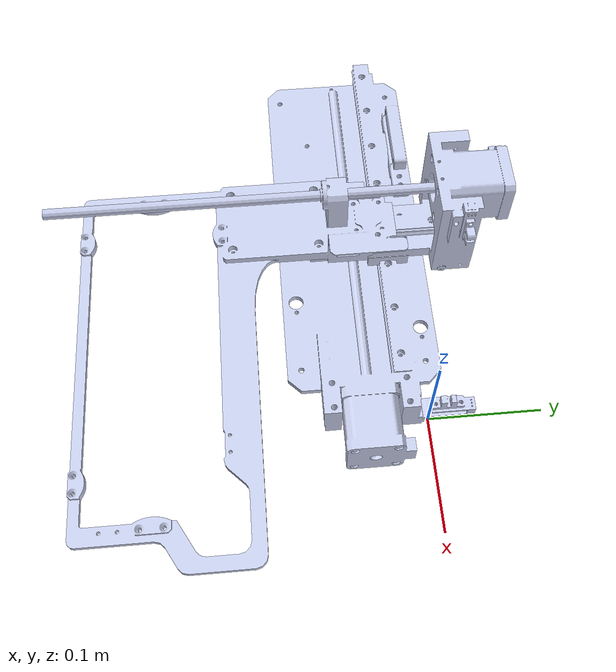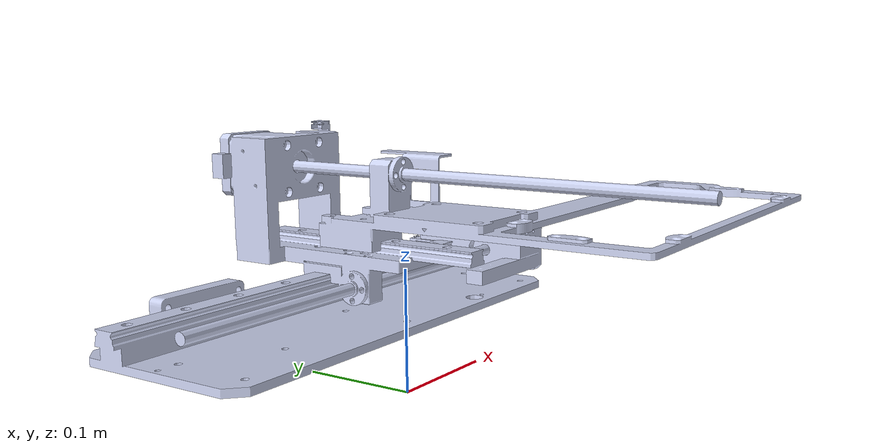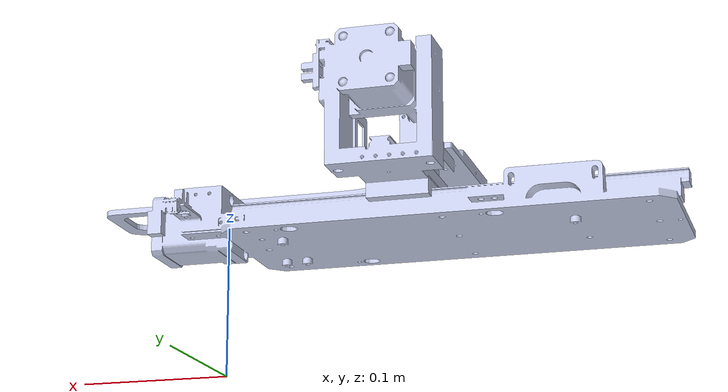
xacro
<?xml version="1.0" encoding="utf-8"?>
<robot xmlns:xacro="http://www.ros.org/wiki/xacro" name="microtome">

  <link name="world"></link>

  <joint name="world_BaseLink" type="fixed">
      <origin
        xyz="0 0 0.1"
        rpy="${pi/2} 0 0"/>
      <parent link="world"/>
      <child link="BaseLink"/>
  </joint>

  <link
    name="BaseLink">
    <inertial>
      <origin
        xyz="-0.0914455979360805 0.0106292183319259 0.0515227341432978"
        rpy="0 0 0" />
      <mass
        value="0.425921740268824" />
      <inertia
        ixx="0.000249339725857296"
        ixy="-2.1715424707838E-07"
        ixz="6.41836160230563E-07"
        iyy="0.00276583093270163"
        iyz="1.74845661136766E-07"
        izz="0.00254801816562914" />
    </inertial>
    <visual>
      <origin
        xyz="0 0 0"
        rpy="0 0 0" />
      <geometry>
        <mesh
          filename="file://$(find microtome)/meshes/BaseLink.STL" />
      </geometry>
      <material
        name="">
        <color
          rgba="0.792156862745098 0.819607843137255 0.933333333333333 1" />
      </material>
    </visual>
    <collision>
      <origin
        xyz="0 0 0"
        rpy="0 0 0" />
      <geometry>
        <mesh
          filename="file://$(find microtome)/meshes/BaseLink.STL" />
      </geometry>
    </collision>
  </link>
  <link
    name="Xaxis">
    <inertial>
      <origin
        xyz="-0.03594 0.028144 0.036995"
        rpy="0 0 0" />
      <mass
        value="0.24622" />
      <inertia
        ixx="0.00044519"
        ixy="4.9037E-08"
        ixz="-7.0228E-08"
        iyy="0.0004805"
        iyz="-2.2563E-06"
        izz="0.00010562" />
    </inertial>
    <visual>
      <origin
        xyz="0 0 0"
        rpy="0 0 0" />
      <geometry>
        <mesh
          filename="file://$(find microtome)/meshes/Xaxis.STL" />
      </geometry>
      <material
        name="">
        <color
          rgba="0.79216 0.81961 0.93333 1" />
      </material>
    </visual>
    <collision>
      <origin
        xyz="0 0 0"
        rpy="0 0 0" />
      <geometry>
        <mesh
          filename="file://$(find microtome)/meshes/Xaxis.STL" />
      </geometry>
    </collision>
  </link>
  <joint
    name="Xjoint"
    type="prismatic">
    <origin
      xyz="-0.07471 0.039 -0.0305"
      rpy="0 0 0" />
    <parent
      link="BaseLink" />
    <child
      link="Xaxis" />
    <axis
      xyz="-1 0 0" />
    <limit
      lower="-0.104"
      upper="0.135"
      effort="1000"
      velocity="1" />
    <dynamics
      damping="0"
      friction="0" />
  </joint>
  <link
    name="Yaxis">
    <inertial>
      <origin
        xyz="0.023707 0.021497 0.095175"
        rpy="0 0 0" />
      <mass
        value="0.13623" />
      <inertia
        ixx="0.00013525"
        ixy="-3.5875E-07"
        ixz="-2.688E-05"
        iyy="0.00060558"
        iyz="2.0328E-07"
        izz="0.00047589" />
    </inertial>
    <visual>
      <origin
        xyz="0 0 0"
        rpy="0 0 0" />
      <geometry>
        <mesh
          filename="file://$(find microtome)/meshes/Yaxis.STL" />
      </geometry>
      <material
        name="">
        <color
          rgba="0.79216 0.81961 0.93333 1" />
      </material>
    </visual>
    <collision>
      <origin
        xyz="0 0 0"
        rpy="0 0 0" />
      <geometry>
        <mesh
          filename="file://$(find microtome)/meshes/Yaxis.STL" />
      </geometry>
    </collision>
  </link>
  <joint
    name="Yjoint"
    type="prismatic">
    <origin
      xyz="-0.02 0.0017 0.056541"
      rpy="0 0 0" />
    <parent
      link="Xaxis" />
    <child
      link="Yaxis" />
    <axis
      xyz="0 0 1" />
    <limit
      lower="-0.046"
      upper="0.07"
      effort="1000"
      velocity="0.001" />
    <dynamics
      damping="0"
      friction="0" />
  </joint>

  <!-- gazebo material declarations -->
  <gazebo reference="BaseLink">
    <material>Gazebo/Orange</material>
    <selfCollide>true</selfCollide>
  </gazebo>

  <gazebo reference="Xaxis">
    <material>Gazebo/White</material>
    <selfCollide>true</selfCollide>
  </gazebo>

  <gazebo reference="Yaxis">
    <material>Gazebo/Grey</material>
    <selfCollide>true</selfCollide>
  </gazebo>

  <!-- gazebo plugin descriptions -->

  <gazebo>
    <plugin filename="libgazebo_ros2_control.so" name="gazebo_ros2_control">
      <robot_sim_type>gazebo_ros2_control/GazeboSystem</robot_sim_type>
      <parameters>$(find microtome)/config/controller_configuration.yaml</parameters>
    </plugin>
  </gazebo>

  <!-- ros2 control plugins -->
  <ros2_control name="GazeboSystem" type="system">

    <hardware>
      <plugin>gazebo_ros2_control/GazeboSystem</plugin>
    </hardware>

    <joint name="Xjoint">
      <command_interface name="position">
        <param name="min">0.0</param>
        <param name="max">1.0</param>
      </command_interface>

      <command_interface name="velocity">
        <param name="min">0.0</param>
        <param name="max">1.0</param>
      </command_interface>

      <command_interface name="effort">
        <param name="min">0.0</param>
        <param name="max">10000.0</param>
      </command_interface>

      <state_interface name="position"/>
      <state_interface name="velocity"/>
      <state_interface name="effort"/>
    </joint>

    <joint name="Yjoint">
      <command_interface name="position">
        <param name="min">0</param>
        <param name="max">1.0</param>
      </command_interface>

      <command_interface name="velocity">
        <param name="min">0.0</param>
        <param name="max">1.0</param>
      </command_interface>

      <command_interface name="effort">
        <param name="min">0.0</param>
        <param name="max">10000.0</param>
      </command_interface>

      <state_interface name="position"/>
      <state_interface name="velocity"/>
      <state_interface name="effort"/>
    </joint>

  </ros2_control>

</robot>
